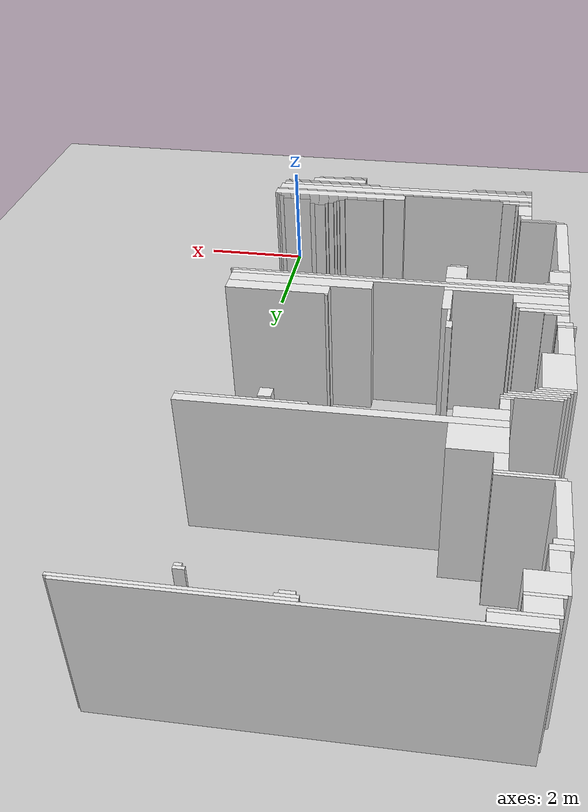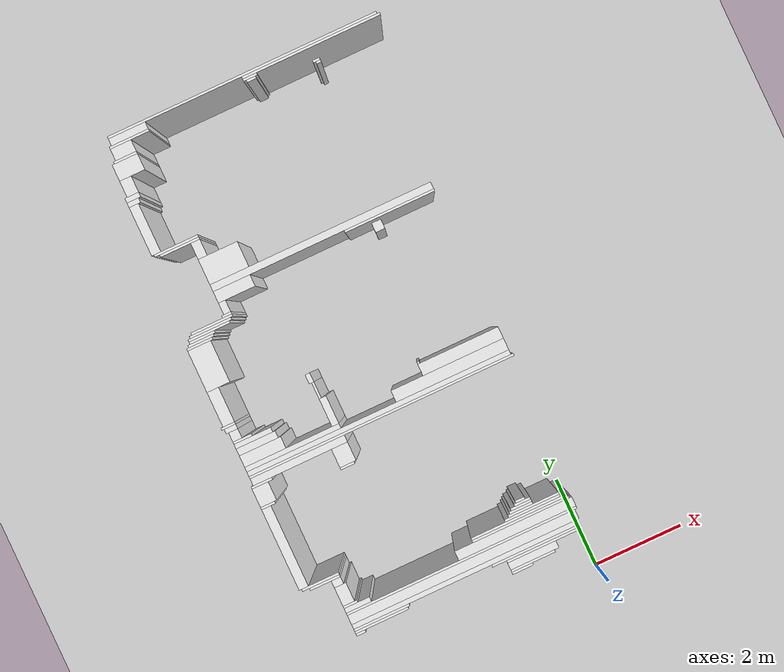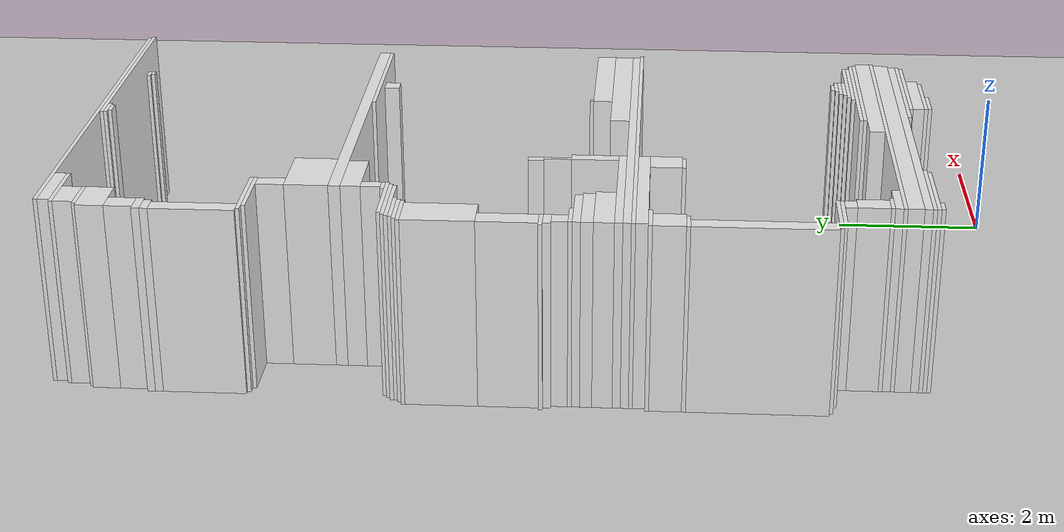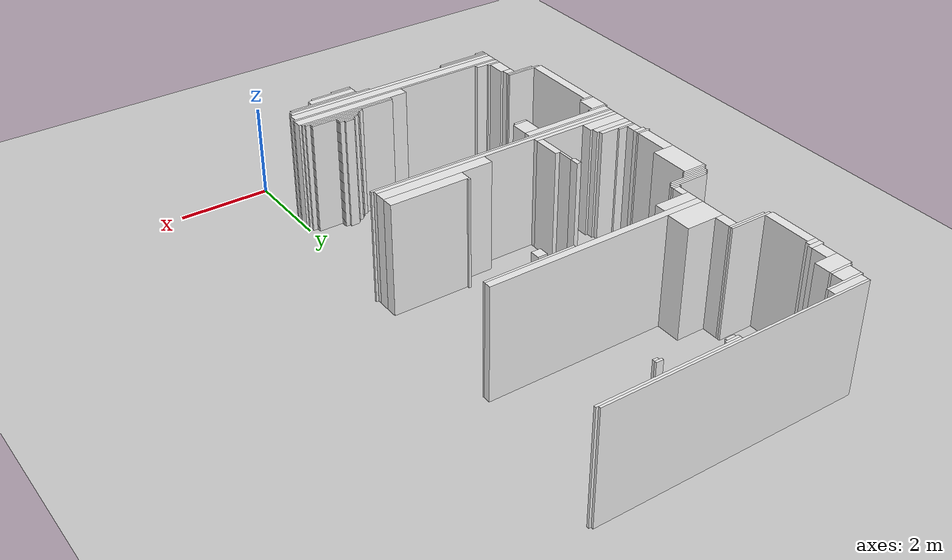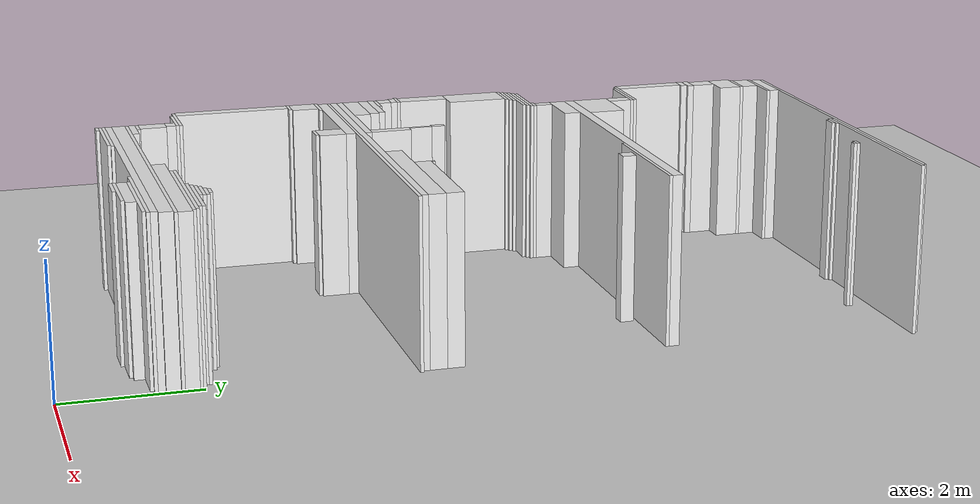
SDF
<sdf version="1.7">
 <world name="occupancy_map_world">
  <model name="ground_plane">
   <static>true</static>
   <link name="link">
    <collision name="collision">
     <geometry><plane><normal>0 0 1</normal><size>32.46 49.62000000000001</size></plane></geometry>
    </collision>
    <visual name="visual">
     <geometry><plane><normal>0 0 1</normal><size>32.46 49.62000000000001</size></plane></geometry>
     <material>
      <script><uri>file://media/materials/scripts/gazebo.material</uri><name>Gazebo/Grey</name></script>
     </material>
    </visual>
   </link>
  </model>
  <model name="wall_99">
   <static>true</static>
   <pose>-4.599999999999998 8.200000000000003 1.25 0 0 0.0</pose>
   <link name="link">
    <collision name="collision">
     <geometry><box><size>0.15000000000000002 0.25 2.5</size></box></geometry>
    </collision>
    <visual name="visual">
     <geometry><box><size>0.15000000000000002 0.25 2.5</size></box></geometry>
     <material>
      <script><uri>file://media/materials/scripts/gazebo.material</uri><name>Gazebo/White</name></script>
     </material>
    </visual>
   </link>
  </model>
  <model name="wall_205">
   <static>true</static>
   <pose>-2.349999999999998 12.200000000000003 1.25 0 0 0.0</pose>
   <link name="link">
    <collision name="collision">
     <geometry><box><size>5.8500000000000005 0.05 2.5</size></box></geometry>
    </collision>
    <visual name="visual">
     <geometry><box><size>5.8500000000000005 0.05 2.5</size></box></geometry>
     <material>
      <script><uri>file://media/materials/scripts/gazebo.material</uri><name>Gazebo/White</name></script>
     </material>
    </visual>
   </link>
  </model>
  <model name="wall_207">
   <static>true</static>
   <pose>-4.874999999999998 12.100000000000001 1.25 0 0 0.0</pose>
   <link name="link">
    <collision name="collision">
     <geometry><box><size>0.8 0.15000000000000002 2.5</size></box></geometry>
    </collision>
    <visual name="visual">
     <geometry><box><size>0.8 0.15000000000000002 2.5</size></box></geometry>
     <material>
      <script><uri>file://media/materials/scripts/gazebo.material</uri><name>Gazebo/White</name></script>
     </material>
    </visual>
   </link>
  </model>
  <model name="wall_208">
   <static>true</static>
   <pose>-0.8749999999999964 12.149999999999999 1.25 0 0 0.0</pose>
   <link name="link">
    <collision name="collision"><geometry><box><size>3.0 0.05 2.5</size></box></geometry></collision>
    <visual name="visual">
     <geometry><box><size>3.0 0.05 2.5</size></box></geometry>
     <material>
      <script><uri>file://media/materials/scripts/gazebo.material</uri><name>Gazebo/White</name></script>
     </material>
    </visual>
   </link>
  </model>
  <model name="wall_209">
   <static>true</static>
   <pose>-2.224999999999998 12.100000000000001 1.25 0 0 0.0</pose>
   <link name="link">
    <collision name="collision">
     <geometry><box><size>0.30000000000000004 0.05 2.5</size></box></geometry>
    </collision>
    <visual name="visual">
     <geometry><box><size>0.30000000000000004 0.05 2.5</size></box></geometry>
     <material>
      <script><uri>file://media/materials/scripts/gazebo.material</uri><name>Gazebo/White</name></script>
     </material>
    </visual>
   </link>
  </model>
  <model name="wall_213">
   <static>true</static>
   <pose>-2.224999999999998 12.050000000000004 1.25 0 0 0.0</pose>
   <link name="link">
    <collision name="collision"><geometry><box><size>0.2 0.05 2.5</size></box></geometry></collision>
    <visual name="visual">
     <geometry><box><size>0.2 0.05 2.5</size></box></geometry>
     <material>
      <script><uri>file://media/materials/scripts/gazebo.material</uri><name>Gazebo/White</name></script>
     </material>
    </visual>
   </link>
  </model>
  <model name="wall_216">
   <static>true</static>
   <pose>-4.899999999999999 12.0 1.25 0 0 0.0</pose>
   <link name="link">
    <collision name="collision">
     <geometry><box><size>0.8500000000000001 0.05 2.5</size></box></geometry>
    </collision>
    <visual name="visual">
     <geometry><box><size>0.8500000000000001 0.05 2.5</size></box></geometry>
     <material>
      <script><uri>file://media/materials/scripts/gazebo.material</uri><name>Gazebo/White</name></script>
     </material>
    </visual>
   </link>
  </model>
  <model name="wall_217">
   <static>true</static>
   <pose>-4.899999999999999 9.650000000000002 1.25 0 0 0.0</pose>
   <link name="link">
    <collision name="collision">
     <geometry><box><size>0.8500000000000001 0.05 2.5</size></box></geometry>
    </collision>
    <visual name="visual">
     <geometry><box><size>0.8500000000000001 0.05 2.5</size></box></geometry>
     <material>
      <script><uri>file://media/materials/scripts/gazebo.material</uri><name>Gazebo/White</name></script>
     </material>
    </visual>
   </link>
  </model>
  <model name="wall_219">
   <static>true</static>
   <pose>-5.099999999999998 11.850000000000001 1.25 0 0 0.0</pose>
   <link name="link">
    <collision name="collision"><geometry><box><size>0.45 0.25 2.5</size></box></geometry></collision>
    <visual name="visual">
     <geometry><box><size>0.45 0.25 2.5</size></box></geometry>
     <material>
      <script><uri>file://media/materials/scripts/gazebo.material</uri><name>Gazebo/White</name></script>
     </material>
    </visual>
   </link>
  </model>
  <model name="wall_222">
   <static>true</static>
   <pose>-0.8999999999999986 11.850000000000001 1.25 0 0 0.0</pose>
   <link name="link">
    <collision name="collision">
     <geometry><box><size>0.15000000000000002 0.05 2.5</size></box></geometry>
    </collision>
    <visual name="visual">
     <geometry><box><size>0.15000000000000002 0.05 2.5</size></box></geometry>
     <material>
      <script><uri>file://media/materials/scripts/gazebo.material</uri><name>Gazebo/White</name></script>
     </material>
    </visual>
   </link>
  </model>
  <model name="wall_226">
   <static>true</static>
   <pose>-0.8749999999999964 11.800000000000004 1.25 0 0 0.0</pose>
   <link name="link">
    <collision name="collision"><geometry><box><size>0.1 0.05 2.5</size></box></geometry></collision>
    <visual name="visual">
     <geometry><box><size>0.1 0.05 2.5</size></box></geometry>
     <material>
      <script><uri>file://media/materials/scripts/gazebo.material</uri><name>Gazebo/White</name></script>
     </material>
    </visual>
   </link>
  </model>
  <model name="wall_230">
   <static>true</static>
   <pose>-5.124999999999998 11.700000000000003 1.25 0 0 0.0</pose>
   <link name="link">
    <collision name="collision"><geometry><box><size>0.5 0.05 2.5</size></box></geometry></collision>
    <visual name="visual">
     <geometry><box><size>0.5 0.05 2.5</size></box></geometry>
     <material>
      <script><uri>file://media/materials/scripts/gazebo.material</uri><name>Gazebo/White</name></script>
     </material>
    </visual>
   </link>
  </model>
  <model name="wall_233">
   <static>true</static>
   <pose>-5.149999999999999 11.5 1.25 0 0 0.0</pose>
   <link name="link">
    <collision name="collision">
     <geometry><box><size>0.55 0.35000000000000003 2.5</size></box></geometry>
    </collision>
    <visual name="visual">
     <geometry><box><size>0.55 0.35000000000000003 2.5</size></box></geometry>
     <material>
      <script><uri>file://media/materials/scripts/gazebo.material</uri><name>Gazebo/White</name></script>
     </material>
    </visual>
   </link>
  </model>
  <model name="wall_241">
   <static>true</static>
   <pose>-5.299999999999997 11.149999999999999 1.25 0 0 0.0</pose>
   <link name="link">
    <collision name="collision">
     <geometry><box><size>0.25 0.35000000000000003 2.5</size></box></geometry>
    </collision>
    <visual name="visual">
     <geometry><box><size>0.25 0.35000000000000003 2.5</size></box></geometry>
     <material>
      <script><uri>file://media/materials/scripts/gazebo.material</uri><name>Gazebo/White</name></script>
     </material>
    </visual>
   </link>
  </model>
  <model name="wall_242">
   <static>true</static>
   <pose>-5.3249999999999975 10.925 1.25 0 0 0.0</pose>
   <link name="link">
    <collision name="collision">
     <geometry><box><size>0.30000000000000004 0.1 2.5</size></box></geometry>
    </collision>
    <visual name="visual">
     <geometry><box><size>0.30000000000000004 0.1 2.5</size></box></geometry>
     <material>
      <script><uri>file://media/materials/scripts/gazebo.material</uri><name>Gazebo/White</name></script>
     </material>
    </visual>
   </link>
  </model>
  <model name="wall_244">
   <static>true</static>
   <pose>-5.349999999999998 10.825000000000003 1.25 0 0 0.0</pose>
   <link name="link">
    <collision name="collision"><geometry><box><size>0.25 0.1 2.5</size></box></geometry></collision>
    <visual name="visual">
     <geometry><box><size>0.25 0.1 2.5</size></box></geometry>
     <material>
      <script><uri>file://media/materials/scripts/gazebo.material</uri><name>Gazebo/White</name></script>
     </material>
    </visual>
   </link>
  </model>
  <model name="wall_246">
   <static>true</static>
   <pose>-5.374999999999998 10.25 1.25 0 0 0.0</pose>
   <link name="link">
    <collision name="collision"><geometry><box><size>0.2 1.05 2.5</size></box></geometry></collision>
    <visual name="visual">
     <geometry><box><size>0.2 1.05 2.5</size></box></geometry>
     <material>
      <script><uri>file://media/materials/scripts/gazebo.material</uri><name>Gazebo/White</name></script>
     </material>
    </visual>
   </link>
  </model>
  <model name="wall_264">
   <static>true</static>
   <pose>-4.9499999999999975 9.700000000000003 1.25 0 0 0.0</pose>
   <link name="link">
    <collision name="collision">
     <geometry><box><size>0.9500000000000001 0.05 2.5</size></box></geometry>
    </collision>
    <visual name="visual">
     <geometry><box><size>0.9500000000000001 0.05 2.5</size></box></geometry>
     <material>
      <script><uri>file://media/materials/scripts/gazebo.material</uri><name>Gazebo/White</name></script>
     </material>
    </visual>
   </link>
  </model>
  <model name="wall_267">
   <static>true</static>
   <pose>-4.5749999999999975 9.450000000000003 1.25 0 0 0.0</pose>
   <link name="link">
    <collision name="collision">
     <geometry><box><size>0.2 0.35000000000000003 2.5</size></box></geometry>
    </collision>
    <visual name="visual">
     <geometry><box><size>0.2 0.35000000000000003 2.5</size></box></geometry>
     <material>
      <script><uri>file://media/materials/scripts/gazebo.material</uri><name>Gazebo/White</name></script>
     </material>
    </visual>
   </link>
  </model>
  <model name="wall_280">
   <static>true</static>
   <pose>-4.249999999999998 9.0 1.25 0 0 0.0</pose>
   <link name="link">
    <collision name="collision">
     <geometry><box><size>0.8500000000000001 0.55 2.5</size></box></geometry>
    </collision>
    <visual name="visual">
     <geometry><box><size>0.8500000000000001 0.55 2.5</size></box></geometry>
     <material>
      <script><uri>file://media/materials/scripts/gazebo.material</uri><name>Gazebo/White</name></script>
     </material>
    </visual>
   </link>
  </model>
  <model name="wall_297">
   <static>true</static>
   <pose>-2.2749999999999986 8.650000000000002 1.25 0 0 0.0</pose>
   <link name="link">
    <collision name="collision">
     <geometry><box><size>4.800000000000001 0.15000000000000002 2.5</size></box></geometry>
    </collision>
    <visual name="visual">
     <geometry><box><size>4.800000000000001 0.15000000000000002 2.5</size></box></geometry>
     <material>
      <script><uri>file://media/materials/scripts/gazebo.material</uri><name>Gazebo/White</name></script>
     </material>
    </visual>
   </link>
  </model>
  <model name="wall_298">
   <static>true</static>
   <pose>-4.274999999999999 8.450000000000003 1.25 0 0 0.0</pose>
   <link name="link">
    <collision name="collision"><geometry><box><size>0.8 0.25 2.5</size></box></geometry></collision>
    <visual name="visual">
     <geometry><box><size>0.8 0.25 2.5</size></box></geometry>
     <material>
      <script><uri>file://media/materials/scripts/gazebo.material</uri><name>Gazebo/White</name></script>
     </material>
    </visual>
   </link>
  </model>
  <model name="wall_299">
   <static>true</static>
   <pose>-0.8499999999999979 8.55 1.25 0 0 0.0</pose>
   <link name="link">
    <collision name="collision">
     <geometry><box><size>1.9500000000000002 0.05 2.5</size></box></geometry>
    </collision>
    <visual name="visual">
     <geometry><box><size>1.9500000000000002 0.05 2.5</size></box></geometry>
     <material>
      <script><uri>file://media/materials/scripts/gazebo.material</uri><name>Gazebo/White</name></script>
     </material>
    </visual>
   </link>
  </model>
  <model name="wall_301">
   <static>true</static>
   <pose>-1.1749999999999972 8.375 1.25 0 0 0.0</pose>
   <link name="link">
    <collision name="collision"><geometry><box><size>0.2 0.2 2.5</size></box></geometry></collision>
    <visual name="visual">
     <geometry><box><size>0.2 0.2 2.5</size></box></geometry>
     <material>
      <script><uri>file://media/materials/scripts/gazebo.material</uri><name>Gazebo/White</name></script>
     </material>
    </visual>
   </link>
  </model>
  <model name="wall_308">
   <static>true</static>
   <pose>-4.624999999999998 8.05 1.25 0 0 0.0</pose>
   <link name="link">
    <collision name="collision"><geometry><box><size>0.2 0.05 2.5</size></box></geometry></collision>
    <visual name="visual">
     <geometry><box><size>0.2 0.05 2.5</size></box></geometry>
     <material>
      <script><uri>file://media/materials/scripts/gazebo.material</uri><name>Gazebo/White</name></script>
     </material>
    </visual>
   </link>
  </model>
  <model name="wall_309">
   <static>true</static>
   <pose>-4.974999999999998 8.0 1.25 0 0 0.0</pose>
   <link name="link">
    <collision name="collision"><geometry><box><size>0.9 0.05 2.5</size></box></geometry></collision>
    <visual name="visual">
     <geometry><box><size>0.9 0.05 2.5</size></box></geometry>
     <material>
      <script><uri>file://media/materials/scripts/gazebo.material</uri><name>Gazebo/White</name></script>
     </material>
    </visual>
   </link>
  </model>
  <model name="wall_311">
   <static>true</static>
   <pose>-5.024999999999999 7.950000000000003 1.25 0 0 0.0</pose>
   <link name="link">
    <collision name="collision"><geometry><box><size>0.9 0.05 2.5</size></box></geometry></collision>
    <visual name="visual">
     <geometry><box><size>0.9 0.05 2.5</size></box></geometry>
     <material>
      <script><uri>file://media/materials/scripts/gazebo.material</uri><name>Gazebo/White</name></script>
     </material>
    </visual>
   </link>
  </model>
  <model name="wall_313">
   <static>true</static>
   <pose>-5.0749999999999975 7.900000000000002 1.25 0 0 0.0</pose>
   <link name="link">
    <collision name="collision"><geometry><box><size>0.9 0.05 2.5</size></box></geometry></collision>
    <visual name="visual">
     <geometry><box><size>0.9 0.05 2.5</size></box></geometry>
     <material>
      <script><uri>file://media/materials/scripts/gazebo.material</uri><name>Gazebo/White</name></script>
     </material>
    </visual>
   </link>
  </model>
  <model name="wall_314">
   <static>true</static>
   <pose>-5.249999999999998 7.850000000000001 1.25 0 0 0.0</pose>
   <link name="link">
    <collision name="collision"><geometry><box><size>0.55 0.05 2.5</size></box></geometry></collision>
    <visual name="visual">
     <geometry><box><size>0.55 0.05 2.5</size></box></geometry>
     <material>
      <script><uri>file://media/materials/scripts/gazebo.material</uri><name>Gazebo/White</name></script>
     </material>
    </visual>
   </link>
  </model>
  <model name="wall_315">
   <static>true</static>
   <pose>-5.299999999999997 7.800000000000001 1.25 0 0 0.0</pose>
   <link name="link">
    <collision name="collision"><geometry><box><size>0.55 0.05 2.5</size></box></geometry></collision>
    <visual name="visual">
     <geometry><box><size>0.55 0.05 2.5</size></box></geometry>
     <material>
      <script><uri>file://media/materials/scripts/gazebo.material</uri><name>Gazebo/White</name></script>
     </material>
    </visual>
   </link>
  </model>
  <model name="wall_317">
   <static>true</static>
   <pose>-5.349999999999998 7.75 1.25 0 0 0.0</pose>
   <link name="link">
    <collision name="collision"><geometry><box><size>0.55 0.05 2.5</size></box></geometry></collision>
    <visual name="visual">
     <geometry><box><size>0.55 0.05 2.5</size></box></geometry>
     <material>
      <script><uri>file://media/materials/scripts/gazebo.material</uri><name>Gazebo/White</name></script>
     </material>
    </visual>
   </link>
  </model>
  <model name="wall_319">
   <static>true</static>
   <pose>-5.374999999999998 7.275000000000002 1.25 0 0 0.0</pose>
   <link name="link">
    <collision name="collision"><geometry><box><size>0.5 0.9 2.5</size></box></geometry></collision>
    <visual name="visual">
     <geometry><box><size>0.5 0.9 2.5</size></box></geometry>
     <material>
      <script><uri>file://media/materials/scripts/gazebo.material</uri><name>Gazebo/White</name></script>
     </material>
    </visual>
   </link>
  </model>
  <model name="wall_322">
   <static>true</static>
   <pose>-5.499999999999998 6.450000000000003 1.25 0 0 0.0</pose>
   <link name="link">
    <collision name="collision"><geometry><box><size>0.25 0.75 2.5</size></box></geometry></collision>
    <visual name="visual">
     <geometry><box><size>0.25 0.75 2.5</size></box></geometry>
     <material>
      <script><uri>file://media/materials/scripts/gazebo.material</uri><name>Gazebo/White</name></script>
     </material>
    </visual>
   </link>
  </model>
  <model name="wall_323">
   <static>true</static>
   <pose>-5.499999999999998 5.975000000000001 1.25 0 0 0.0</pose>
   <link name="link">
    <collision name="collision"><geometry><box><size>0.25 0.1 2.5</size></box></geometry></collision>
    <visual name="visual">
     <geometry><box><size>0.25 0.1 2.5</size></box></geometry>
     <material>
      <script><uri>file://media/materials/scripts/gazebo.material</uri><name>Gazebo/White</name></script>
     </material>
    </visual>
   </link>
  </model>
  <model name="wall_332">
   <static>true</static>
   <pose>-3.674999999999997 6.225000000000001 1.25 0 0 0.0</pose>
   <link name="link">
    <collision name="collision"><geometry><box><size>0.1 0.2 2.5</size></box></geometry></collision>
    <visual name="visual">
     <geometry><box><size>0.1 0.2 2.5</size></box></geometry>
     <material>
      <script><uri>file://media/materials/scripts/gazebo.material</uri><name>Gazebo/White</name></script>
     </material>
    </visual>
   </link>
  </model>
  <model name="wall_333">
   <static>true</static>
   <pose>-3.6499999999999986 5.950000000000003 1.25 0 0 0.0</pose>
   <link name="link">
    <collision name="collision">
     <geometry><box><size>0.05 0.35000000000000003 2.5</size></box></geometry>
    </collision>
    <visual name="visual">
     <geometry><box><size>0.05 0.35000000000000003 2.5</size></box></geometry>
     <material>
      <script><uri>file://media/materials/scripts/gazebo.material</uri><name>Gazebo/White</name></script>
     </material>
    </visual>
   </link>
  </model>
  <model name="wall_334">
   <static>true</static>
   <pose>-5.524999999999999 6.050000000000001 1.25 0 0 0.0</pose>
   <link name="link">
    <collision name="collision">
     <geometry><box><size>0.30000000000000004 0.05 2.5</size></box></geometry>
    </collision>
    <visual name="visual">
     <geometry><box><size>0.30000000000000004 0.05 2.5</size></box></geometry>
     <material>
      <script><uri>file://media/materials/scripts/gazebo.material</uri><name>Gazebo/White</name></script>
     </material>
    </visual>
   </link>
  </model>
  <model name="wall_336">
   <static>true</static>
   <pose>-5.474999999999998 5.825000000000003 1.25 0 0 0.0</pose>
   <link name="link">
    <collision name="collision"><geometry><box><size>0.2 0.2 2.5</size></box></geometry></collision>
    <visual name="visual">
     <geometry><box><size>0.2 0.2 2.5</size></box></geometry>
     <material>
      <script><uri>file://media/materials/scripts/gazebo.material</uri><name>Gazebo/White</name></script>
     </material>
    </visual>
   </link>
  </model>
  <model name="wall_337">
   <static>true</static>
   <pose>-3.599999999999998 5.475000000000001 1.25 0 0 0.0</pose>
   <link name="link">
    <collision name="collision">
     <geometry><box><size>0.15000000000000002 0.6000000000000001 2.5</size></box></geometry>
    </collision>
    <visual name="visual">
     <geometry><box><size>0.15000000000000002 0.6000000000000001 2.5</size></box></geometry>
     <material>
      <script><uri>file://media/materials/scripts/gazebo.material</uri><name>Gazebo/White</name></script>
     </material>
    </visual>
   </link>
  </model>
  <model name="wall_338">
   <static>true</static>
   <pose>-5.374999999999998 5.700000000000003 1.25 0 0 0.0</pose>
   <link name="link">
    <collision name="collision"><geometry><box><size>0.4 0.05 2.5</size></box></geometry></collision>
    <visual name="visual">
     <geometry><box><size>0.4 0.05 2.5</size></box></geometry>
     <material>
      <script><uri>file://media/materials/scripts/gazebo.material</uri><name>Gazebo/White</name></script>
     </material>
    </visual>
   </link>
  </model>
  <model name="wall_339">
   <static>true</static>
   <pose>-5.174999999999997 5.625 1.25 0 0 0.0</pose>
   <link name="link">
    <collision name="collision"><geometry><box><size>0.8 0.1 2.5</size></box></geometry></collision>
    <visual name="visual">
     <geometry><box><size>0.8 0.1 2.5</size></box></geometry>
     <material>
      <script><uri>file://media/materials/scripts/gazebo.material</uri><name>Gazebo/White</name></script>
     </material>
    </visual>
   </link>
  </model>
  <model name="wall_340">
   <static>true</static>
   <pose>-5.174999999999997 2.5 1.25 0 0 0.0</pose>
   <link name="link">
    <collision name="collision"><geometry><box><size>0.8 0.05 2.5</size></box></geometry></collision>
    <visual name="visual">
     <geometry><box><size>0.8 0.05 2.5</size></box></geometry>
     <material>
      <script><uri>file://media/materials/scripts/gazebo.material</uri><name>Gazebo/White</name></script>
     </material>
    </visual>
   </link>
  </model>
  <model name="wall_342">
   <static>true</static>
   <pose>-1.5999999999999979 5.600000000000001 1.25 0 0 0.0</pose>
   <link name="link">
    <collision name="collision"><geometry><box><size>0.05 0.05 2.5</size></box></geometry></collision>
    <visual name="visual">
     <geometry><box><size>0.05 0.05 2.5</size></box></geometry>
     <material>
      <script><uri>file://media/materials/scripts/gazebo.material</uri><name>Gazebo/White</name></script>
     </material>
    </visual>
   </link>
  </model>
  <model name="wall_343">
   <static>true</static>
   <pose>-5.149999999999999 5.5 1.25 0 0 0.0</pose>
   <link name="link">
    <collision name="collision">
     <geometry><box><size>0.8500000000000001 0.15000000000000002 2.5</size></box></geometry>
    </collision>
    <visual name="visual">
     <geometry><box><size>0.8500000000000001 0.15000000000000002 2.5</size></box></geometry>
     <material>
      <script><uri>file://media/materials/scripts/gazebo.material</uri><name>Gazebo/White</name></script>
     </material>
    </visual>
   </link>
  </model>
  <model name="wall_344">
   <static>true</static>
   <pose>-0.7499999999999964 5.450000000000003 1.25 0 0 0.0</pose>
   <link name="link">
    <collision name="collision"><geometry><box><size>1.75 0.25 2.5</size></box></geometry></collision>
    <visual name="visual">
     <geometry><box><size>1.75 0.25 2.5</size></box></geometry>
     <material>
      <script><uri>file://media/materials/scripts/gazebo.material</uri><name>Gazebo/White</name></script>
     </material>
    </visual>
   </link>
  </model>
  <model name="wall_349">
   <static>true</static>
   <pose>-5.124999999999998 5.300000000000001 1.25 0 0 0.0</pose>
   <link name="link">
    <collision name="collision"><geometry><box><size>0.9 0.25 2.5</size></box></geometry></collision>
    <visual name="visual">
     <geometry><box><size>0.9 0.25 2.5</size></box></geometry>
     <material>
      <script><uri>file://media/materials/scripts/gazebo.material</uri><name>Gazebo/White</name></script>
     </material>
    </visual>
   </link>
  </model>
  <model name="wall_351">
   <static>true</static>
   <pose>-1.0999999999999979 5.200000000000003 1.25 0 0 0.0</pose>
   <link name="link">
    <collision name="collision"><geometry><box><size>2.45 0.25 2.5</size></box></geometry></collision>
    <visual name="visual">
     <geometry><box><size>2.45 0.25 2.5</size></box></geometry>
     <material>
      <script><uri>file://media/materials/scripts/gazebo.material</uri><name>Gazebo/White</name></script>
     </material>
    </visual>
   </link>
  </model>
  <model name="wall_354">
   <static>true</static>
   <pose>-4.549999999999997 5.125 1.25 0 0 0.0</pose>
   <link name="link">
    <collision name="collision">
     <geometry><box><size>2.0500000000000003 0.1 2.5</size></box></geometry>
    </collision>
    <visual name="visual">
     <geometry><box><size>2.0500000000000003 0.1 2.5</size></box></geometry>
     <material>
      <script><uri>file://media/materials/scripts/gazebo.material</uri><name>Gazebo/White</name></script>
     </material>
    </visual>
   </link>
  </model>
  <model name="wall_355">
   <static>true</static>
   <pose>-4.549999999999997 4.850000000000001 1.25 0 0 0.0</pose>
   <link name="link">
    <collision name="collision">
     <geometry><box><size>2.0500000000000003 0.15000000000000002 2.5</size></box></geometry>
    </collision>
    <visual name="visual">
     <geometry><box><size>2.0500000000000003 0.15000000000000002 2.5</size></box></geometry>
     <material>
      <script><uri>file://media/materials/scripts/gazebo.material</uri><name>Gazebo/White</name></script>
     </material>
    </visual>
   </link>
  </model>
  <model name="wall_360">
   <static>true</static>
   <pose>-2.724999999999998 5.025000000000002 1.25 0 0 0.0</pose>
   <link name="link">
    <collision name="collision"><geometry><box><size>5.7 0.1 2.5</size></box></geometry></collision>
    <visual name="visual">
     <geometry><box><size>5.7 0.1 2.5</size></box></geometry>
     <material>
      <script><uri>file://media/materials/scripts/gazebo.material</uri><name>Gazebo/White</name></script>
     </material>
    </visual>
   </link>
  </model>
  <model name="wall_361">
   <static>true</static>
   <pose>-2.6999999999999975 4.950000000000003 1.25 0 0 0.0</pose>
   <link name="link">
    <collision name="collision"><geometry><box><size>5.75 0.05 2.5</size></box></geometry></collision>
    <visual name="visual">
     <geometry><box><size>5.75 0.05 2.5</size></box></geometry>
     <material>
      <script><uri>file://media/materials/scripts/gazebo.material</uri><name>Gazebo/White</name></script>
     </material>
    </visual>
   </link>
  </model>
  <model name="wall_365">
   <static>true</static>
   <pose>-5.399999999999999 4.75 1.25 0 0 0.0</pose>
   <link name="link">
    <collision name="collision"><geometry><box><size>0.45 0.05 2.5</size></box></geometry></collision>
    <visual name="visual">
     <geometry><box><size>0.45 0.05 2.5</size></box></geometry>
     <material>
      <script><uri>file://media/materials/scripts/gazebo.material</uri><name>Gazebo/White</name></script>
     </material>
    </visual>
   </link>
  </model>
  <model name="wall_366">
   <static>true</static>
   <pose>-3.6999999999999975 4.575000000000003 1.25 0 0 0.0</pose>
   <link name="link">
    <collision name="collision">
     <geometry><box><size>0.35000000000000003 0.4 2.5</size></box></geometry>
    </collision>
    <visual name="visual">
     <geometry><box><size>0.35000000000000003 0.4 2.5</size></box></geometry>
     <material>
      <script><uri>file://media/materials/scripts/gazebo.material</uri><name>Gazebo/White</name></script>
     </material>
    </visual>
   </link>
  </model>
  <model name="wall_367">
   <static>true</static>
   <pose>-5.4499999999999975 4.525000000000002 1.25 0 0 0.0</pose>
   <link name="link">
    <collision name="collision">
     <geometry><box><size>0.35000000000000003 0.4 2.5</size></box></geometry>
    </collision>
    <visual name="visual">
     <geometry><box><size>0.35000000000000003 0.4 2.5</size></box></geometry>
     <material>
      <script><uri>file://media/materials/scripts/gazebo.material</uri><name>Gazebo/White</name></script>
     </material>
    </visual>
   </link>
  </model>
  <model name="wall_371">
   <static>true</static>
   <pose>-3.724999999999998 4.350000000000001 1.25 0 0 0.0</pose>
   <link name="link">
    <collision name="collision">
     <geometry><box><size>0.30000000000000004 0.05 2.5</size></box></geometry>
    </collision>
    <visual name="visual">
     <geometry><box><size>0.30000000000000004 0.05 2.5</size></box></geometry>
     <material>
      <script><uri>file://media/materials/scripts/gazebo.material</uri><name>Gazebo/White</name></script>
     </material>
    </visual>
   </link>
  </model>
  <model name="wall_372">
   <static>true</static>
   <pose>-5.474999999999998 4.300000000000001 1.25 0 0 0.0</pose>
   <link name="link">
    <collision name="collision">
     <geometry><box><size>0.30000000000000004 0.05 2.5</size></box></geometry>
    </collision>
    <visual name="visual">
     <geometry><box><size>0.30000000000000004 0.05 2.5</size></box></geometry>
     <material>
      <script><uri>file://media/materials/scripts/gazebo.material</uri><name>Gazebo/White</name></script>
     </material>
    </visual>
   </link>
  </model>
  <model name="wall_373">
   <static>true</static>
   <pose>-5.524999999999999 3.400000000000002 1.25 0 0 0.0</pose>
   <link name="link">
    <collision name="collision"><geometry><box><size>0.2 1.75 2.5</size></box></geometry></collision>
    <visual name="visual">
     <geometry><box><size>0.2 1.75 2.5</size></box></geometry>
     <material>
      <script><uri>file://media/materials/scripts/gazebo.material</uri><name>Gazebo/White</name></script>
     </material>
    </visual>
   </link>
  </model>
  <model name="wall_379">
   <static>true</static>
   <pose>-5.099999999999998 2.450000000000003 1.25 0 0 0.0</pose>
   <link name="link">
    <collision name="collision"><geometry><box><size>0.65 0.05 2.5</size></box></geometry></collision>
    <visual name="visual">
     <geometry><box><size>0.65 0.05 2.5</size></box></geometry>
     <material>
      <script><uri>file://media/materials/scripts/gazebo.material</uri><name>Gazebo/White</name></script>
     </material>
    </visual>
   </link>
  </model>
  <model name="wall_382">
   <static>true</static>
   <pose>-4.874999999999998 2.3500000000000014 1.25 0 0 0.0</pose>
   <link name="link">
    <collision name="collision">
     <geometry><box><size>0.2 0.15000000000000002 2.5</size></box></geometry>
    </collision>
    <visual name="visual">
     <geometry><box><size>0.2 0.15000000000000002 2.5</size></box></geometry>
     <material>
      <script><uri>file://media/materials/scripts/gazebo.material</uri><name>Gazebo/White</name></script>
     </material>
    </visual>
   </link>
  </model>
  <model name="wall_383">
   <static>true</static>
   <pose>-4.874999999999998 1.25 1.25 0 0 0.0</pose>
   <link name="link">
    <collision name="collision"><geometry><box><size>0.2 0.05 2.5</size></box></geometry></collision>
    <visual name="visual">
     <geometry><box><size>0.2 0.05 2.5</size></box></geometry>
     <material>
      <script><uri>file://media/materials/scripts/gazebo.material</uri><name>Gazebo/White</name></script>
     </material>
    </visual>
   </link>
  </model>
  <model name="wall_388">
   <static>true</static>
   <pose>-0.9249999999999972 2.3000000000000007 1.25 0 0 0.0</pose>
   <link name="link">
    <collision name="collision"><geometry><box><size>0.2 0.05 2.5</size></box></geometry></collision>
    <visual name="visual">
     <geometry><box><size>0.2 0.05 2.5</size></box></geometry>
     <material>
      <script><uri>file://media/materials/scripts/gazebo.material</uri><name>Gazebo/White</name></script>
     </material>
    </visual>
   </link>
  </model>
  <model name="wall_390">
   <static>true</static>
   <pose>-4.849999999999998 2.075000000000003 1.25 0 0 0.0</pose>
   <link name="link">
    <collision name="collision"><geometry><box><size>0.25 0.4 2.5</size></box></geometry></collision>
    <visual name="visual">
     <geometry><box><size>0.25 0.4 2.5</size></box></geometry>
     <material>
      <script><uri>file://media/materials/scripts/gazebo.material</uri><name>Gazebo/White</name></script>
     </material>
    </visual>
   </link>
  </model>
  <model name="wall_391">
   <static>true</static>
   <pose>-0.8999999999999986 2.25 1.25 0 0 0.0</pose>
   <link name="link">
    <collision name="collision">
     <geometry><box><size>0.35000000000000003 0.05 2.5</size></box></geometry>
    </collision>
    <visual name="visual">
     <geometry><box><size>0.35000000000000003 0.05 2.5</size></box></geometry>
     <material>
      <script><uri>file://media/materials/scripts/gazebo.material</uri><name>Gazebo/White</name></script>
     </material>
    </visual>
   </link>
  </model>
  <model name="wall_392">
   <static>true</static>
   <pose>-0.9499999999999993 2.200000000000003 1.25 0 0 0.0</pose>
   <link name="link">
    <collision name="collision"><geometry><box><size>0.45 0.05 2.5</size></box></geometry></collision>
    <visual name="visual">
     <geometry><box><size>0.45 0.05 2.5</size></box></geometry>
     <material>
      <script><uri>file://media/materials/scripts/gazebo.material</uri><name>Gazebo/White</name></script>
     </material>
    </visual>
   </link>
  </model>
  <model name="wall_395">
   <static>true</static>
   <pose>-0.9749999999999979 2.150000000000002 1.25 0 0 0.0</pose>
   <link name="link">
    <collision name="collision"><geometry><box><size>0.5 0.05 2.5</size></box></geometry></collision>
    <visual name="visual">
     <geometry><box><size>0.5 0.05 2.5</size></box></geometry>
     <material>
      <script><uri>file://media/materials/scripts/gazebo.material</uri><name>Gazebo/White</name></script>
     </material>
    </visual>
   </link>
  </model>
  <model name="wall_396">
   <static>true</static>
   <pose>-0.7249999999999979 2.1000000000000014 1.25 0 0 0.0</pose>
   <link name="link">
    <collision name="collision"><geometry><box><size>1.1 0.05 2.5</size></box></geometry></collision>
    <visual name="visual">
     <geometry><box><size>1.1 0.05 2.5</size></box></geometry>
     <material>
      <script><uri>file://media/materials/scripts/gazebo.material</uri><name>Gazebo/White</name></script>
     </material>
    </visual>
   </link>
  </model>
  <model name="wall_397">
   <static>true</static>
   <pose>-0.7749999999999986 2.0500000000000007 1.25 0 0 0.0</pose>
   <link name="link">
    <collision name="collision">
     <geometry><box><size>1.2000000000000002 0.05 2.5</size></box></geometry>
    </collision>
    <visual name="visual">
     <geometry><box><size>1.2000000000000002 0.05 2.5</size></box></geometry>
     <material>
      <script><uri>file://media/materials/scripts/gazebo.material</uri><name>Gazebo/White</name></script>
     </material>
    </visual>
   </link>
  </model>
  <model name="wall_398">
   <static>true</static>
   <pose>-1.0999999999999979 2.0 1.25 0 0 0.0</pose>
   <link name="link">
    <collision name="collision">
     <geometry><box><size>2.0500000000000003 0.05 2.5</size></box></geometry>
    </collision>
    <visual name="visual">
     <geometry><box><size>2.0500000000000003 0.05 2.5</size></box></geometry>
     <material>
      <script><uri>file://media/materials/scripts/gazebo.material</uri><name>Gazebo/White</name></script>
     </material>
    </visual>
   </link>
  </model>
  <model name="wall_399">
   <static>true</static>
   <pose>-1.0749999999999993 1.9500000000000028 1.25 0 0 0.0</pose>
   <link name="link">
    <collision name="collision"><geometry><box><size>2.1 0.05 2.5</size></box></geometry></collision>
    <visual name="visual">
     <geometry><box><size>2.1 0.05 2.5</size></box></geometry>
     <material>
      <script><uri>file://media/materials/scripts/gazebo.material</uri><name>Gazebo/White</name></script>
     </material>
    </visual>
   </link>
  </model>
  <model name="wall_400">
   <static>true</static>
   <pose>-1.2499999999999964 1.8250000000000028 1.25 0 0 0.0</pose>
   <link name="link">
    <collision name="collision">
     <geometry><box><size>2.5500000000000003 0.2 2.5</size></box></geometry>
    </collision>
    <visual name="visual">
     <geometry><box><size>2.5500000000000003 0.2 2.5</size></box></geometry>
     <material>
      <script><uri>file://media/materials/scripts/gazebo.material</uri><name>Gazebo/White</name></script>
     </material>
    </visual>
   </link>
  </model>
  <model name="wall_401">
   <static>true</static>
   <pose>-4.8249999999999975 1.8500000000000014 1.25 0 0 0.0</pose>
   <link name="link">
    <collision name="collision">
     <geometry><box><size>0.30000000000000004 0.05 2.5</size></box></geometry>
    </collision>
    <visual name="visual">
     <geometry><box><size>0.30000000000000004 0.05 2.5</size></box></geometry>
     <material>
      <script><uri>file://media/materials/scripts/gazebo.material</uri><name>Gazebo/White</name></script>
     </material>
    </visual>
   </link>
  </model>
  <model name="wall_402">
   <static>true</static>
   <pose>-4.6999999999999975 1.7750000000000021 1.25 0 0 0.0</pose>
   <link name="link">
    <collision name="collision"><geometry><box><size>0.55 0.1 2.5</size></box></geometry></collision>
    <visual name="visual">
     <geometry><box><size>0.55 0.1 2.5</size></box></geometry>
     <material>
      <script><uri>file://media/materials/scripts/gazebo.material</uri><name>Gazebo/White</name></script>
     </material>
    </visual>
   </link>
  </model>
  <model name="wall_403">
   <static>true</static>
   <pose>-2.474999999999998 1.7000000000000028 1.25 0 0 0.0</pose>
   <link name="link">
    <collision name="collision"><geometry><box><size>5.0 0.05 2.5</size></box></geometry></collision>
    <visual name="visual">
     <geometry><box><size>5.0 0.05 2.5</size></box></geometry>
     <material>
      <script><uri>file://media/materials/scripts/gazebo.material</uri><name>Gazebo/White</name></script>
     </material>
    </visual>
   </link>
  </model>
  <model name="wall_404">
   <static>true</static>
   <pose>-2.4999999999999982 1.5750000000000028 1.25 0 0 0.0</pose>
   <link name="link">
    <collision name="collision"><geometry><box><size>4.95 0.2 2.5</size></box></geometry></collision>
    <visual name="visual">
     <geometry><box><size>4.95 0.2 2.5</size></box></geometry>
     <material>
      <script><uri>file://media/materials/scripts/gazebo.material</uri><name>Gazebo/White</name></script>
     </material>
    </visual>
   </link>
  </model>
  <model name="wall_406">
   <static>true</static>
   <pose>-2.5249999999999986 1.4250000000000007 1.25 0 0 0.0</pose>
   <link name="link">
    <collision name="collision"><geometry><box><size>4.9 0.1 2.5</size></box></geometry></collision>
    <visual name="visual">
     <geometry><box><size>4.9 0.1 2.5</size></box></geometry>
     <material>
      <script><uri>file://media/materials/scripts/gazebo.material</uri><name>Gazebo/White</name></script>
     </material>
    </visual>
   </link>
  </model>
  <model name="wall_407">
   <static>true</static>
   <pose>-4.374999999999998 1.3500000000000014 1.25 0 0 0.0</pose>
   <link name="link">
    <collision name="collision">
     <geometry><box><size>1.2000000000000002 0.05 2.5</size></box></geometry>
    </collision>
    <visual name="visual">
     <geometry><box><size>1.2000000000000002 0.05 2.5</size></box></geometry>
     <material>
      <script><uri>file://media/materials/scripts/gazebo.material</uri><name>Gazebo/White</name></script>
     </material>
    </visual>
   </link>
  </model>
  <model name="wall_408">
   <static>true</static>
   <pose>-1.0249999999999986 1.3500000000000014 1.25 0 0 0.0</pose>
   <link name="link">
    <collision name="collision">
     <geometry><box><size>1.9000000000000001 0.05 2.5</size></box></geometry>
    </collision>
    <visual name="visual">
     <geometry><box><size>1.9000000000000001 0.05 2.5</size></box></geometry>
     <material>
      <script><uri>file://media/materials/scripts/gazebo.material</uri><name>Gazebo/White</name></script>
     </material>
    </visual>
   </link>
  </model>
  <model name="wall_410">
   <static>true</static>
   <pose>-4.399999999999999 1.3000000000000007 1.25 0 0 0.0</pose>
   <link name="link">
    <collision name="collision">
     <geometry><box><size>1.1500000000000001 0.05 2.5</size></box></geometry>
    </collision>
    <visual name="visual">
     <geometry><box><size>1.1500000000000001 0.05 2.5</size></box></geometry>
     <material>
      <script><uri>file://media/materials/scripts/gazebo.material</uri><name>Gazebo/White</name></script>
     </material>
    </visual>
   </link>
  </model>
  <model name="wall_411">
   <static>true</static>
   <pose>-0.8999999999999986 1.3000000000000007 1.25 0 0 0.0</pose>
   <link name="link">
    <collision name="collision"><geometry><box><size>1.55 0.05 2.5</size></box></geometry></collision>
    <visual name="visual">
     <geometry><box><size>1.55 0.05 2.5</size></box></geometry>
     <material>
      <script><uri>file://media/materials/scripts/gazebo.material</uri><name>Gazebo/White</name></script>
     </material>
    </visual>
   </link>
  </model>
  <model name="wall_413">
   <static>true</static>
   <pose>-1.1499999999999986 1.2000000000000028 1.25 0 0 0.0</pose>
   <link name="link">
    <collision name="collision">
     <geometry><box><size>1.05 0.15000000000000002 2.5</size></box></geometry>
    </collision>
    <visual name="visual">
     <geometry><box><size>1.05 0.15000000000000002 2.5</size></box></geometry>
     <material>
      <script><uri>file://media/materials/scripts/gazebo.material</uri><name>Gazebo/White</name></script>
     </material>
    </visual>
   </link>
  </model>
  <model name="wall_419">
   <static>true</static>
   <pose>-1.1999999999999993 1.1000000000000014 1.25 0 0 0.0</pose>
   <link name="link">
    <collision name="collision">
     <geometry><box><size>0.9500000000000001 0.05 2.5</size></box></geometry>
    </collision>
    <visual name="visual">
     <geometry><box><size>0.9500000000000001 0.05 2.5</size></box></geometry>
     <material>
      <script><uri>file://media/materials/scripts/gazebo.material</uri><name>Gazebo/White</name></script>
     </material>
    </visual>
   </link>
  </model>
  <model name="wall_421">
   <static>true</static>
   <pose>-1.4499999999999993 1.0500000000000007 1.25 0 0 0.0</pose>
   <link name="link">
    <collision name="collision"><geometry><box><size>0.45 0.05 2.5</size></box></geometry></collision>
    <visual name="visual">
     <geometry><box><size>0.45 0.05 2.5</size></box></geometry>
     <material>
      <script><uri>file://media/materials/scripts/gazebo.material</uri><name>Gazebo/White</name></script>
     </material>
    </visual>
   </link>
  </model>
  <model name="wall_735">
   <static>true</static>
   <pose>-3.6499999999999986 5.950000000000003 1.25 0 0 0.0</pose>
   <link name="link">
    <collision name="collision">
     <geometry><box><size>0.05 0.35000000000000003 2.5</size></box></geometry>
    </collision>
    <visual name="visual">
     <geometry><box><size>0.05 0.35000000000000003 2.5</size></box></geometry>
     <material>
      <script><uri>file://media/materials/scripts/gazebo.material</uri><name>Gazebo/White</name></script>
     </material>
    </visual>
   </link>
  </model>
  <model name="wall_740">
   <static>true</static>
   <pose>-1.5999999999999979 5.600000000000001 1.25 0 0 0.0</pose>
   <link name="link">
    <collision name="collision"><geometry><box><size>0.05 0.05 2.5</size></box></geometry></collision>
    <visual name="visual">
     <geometry><box><size>0.05 0.05 2.5</size></box></geometry>
     <material>
      <script><uri>file://media/materials/scripts/gazebo.material</uri><name>Gazebo/White</name></script>
     </material>
    </visual>
   </link>
  </model>
 </world>
</sdf>
